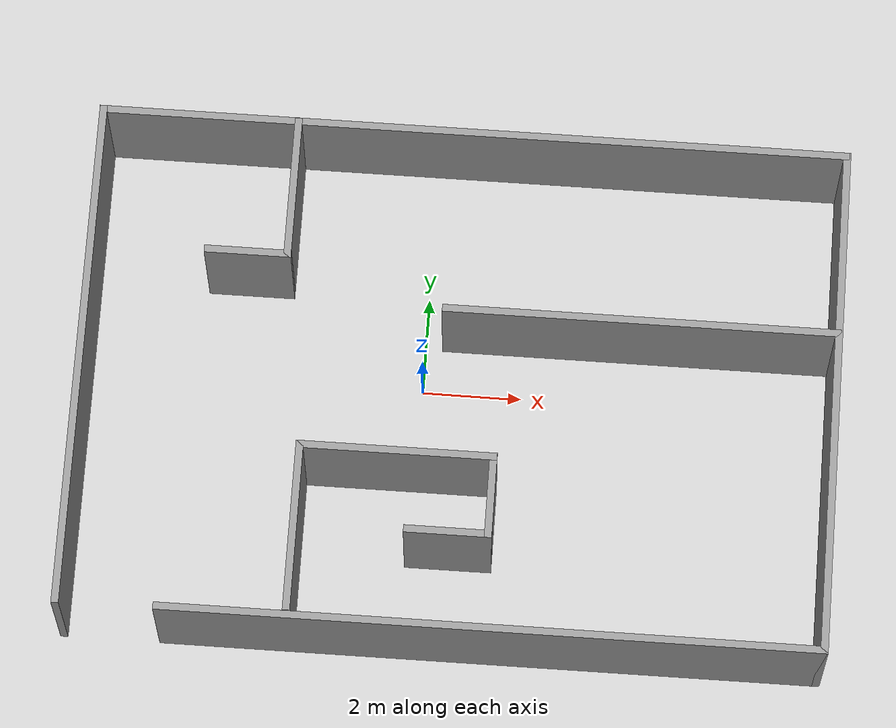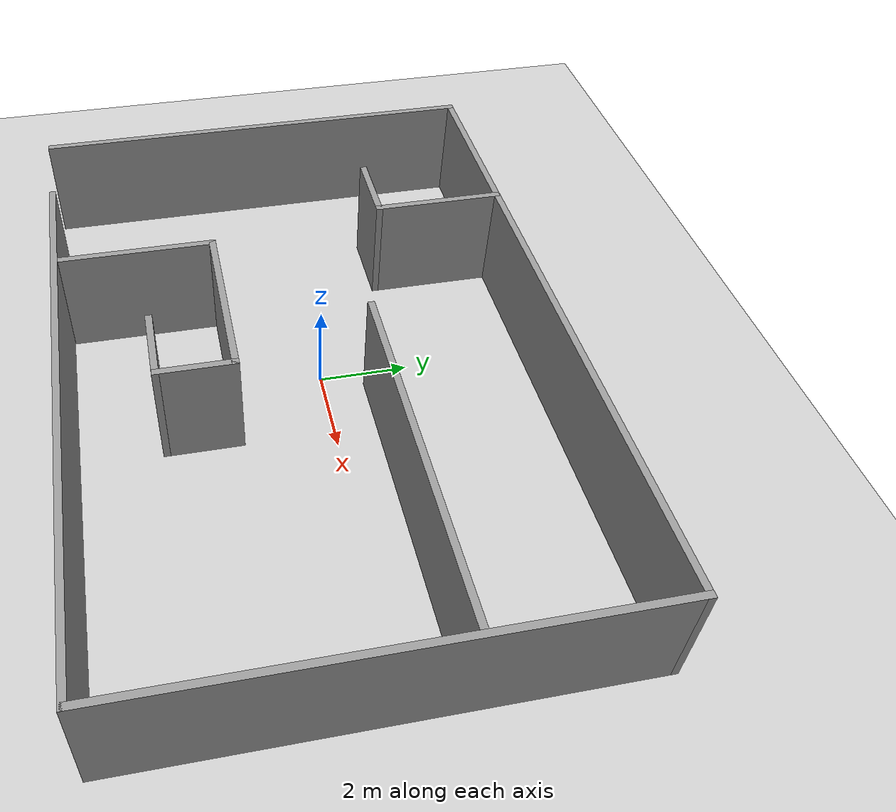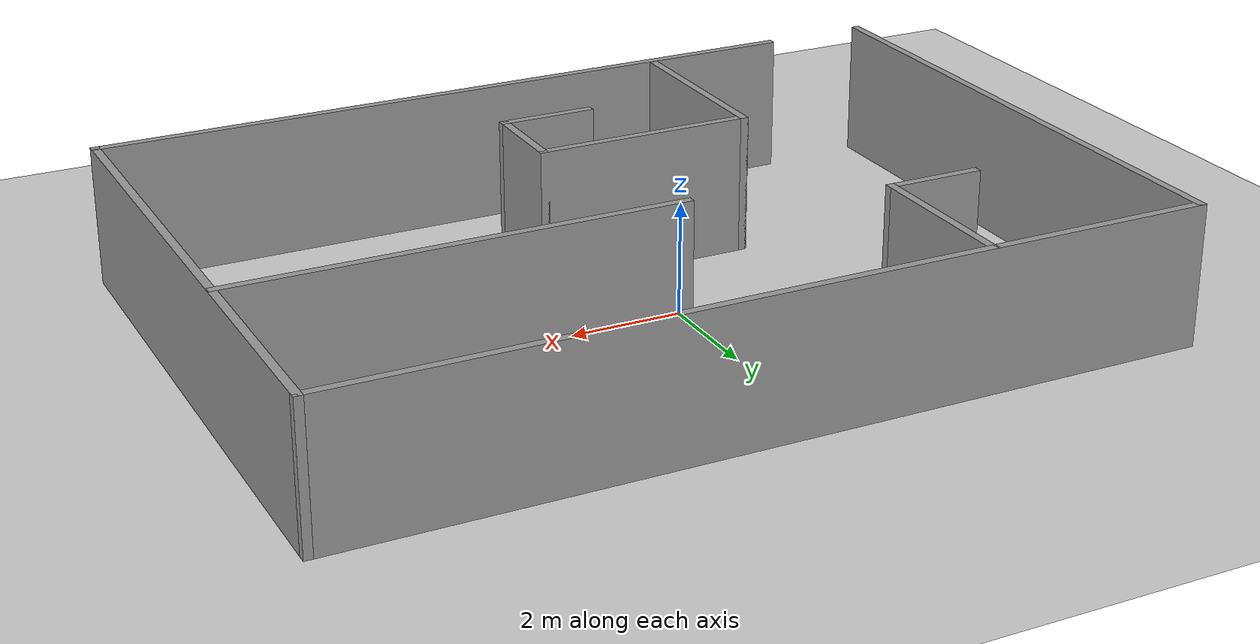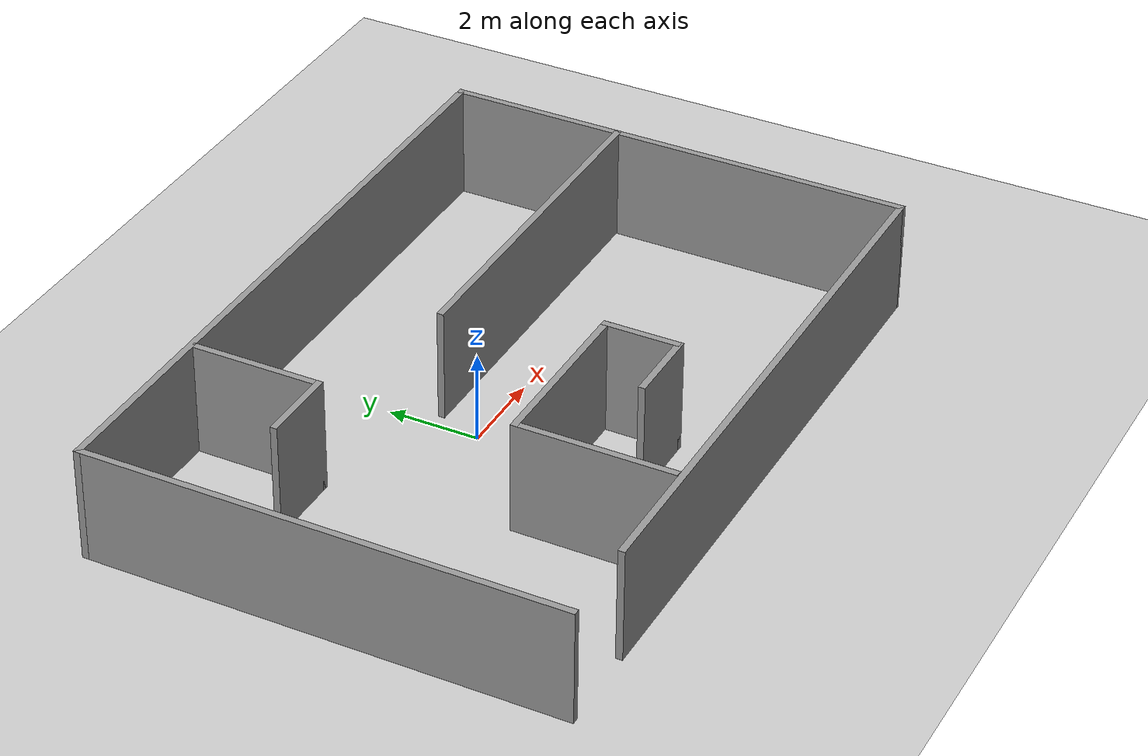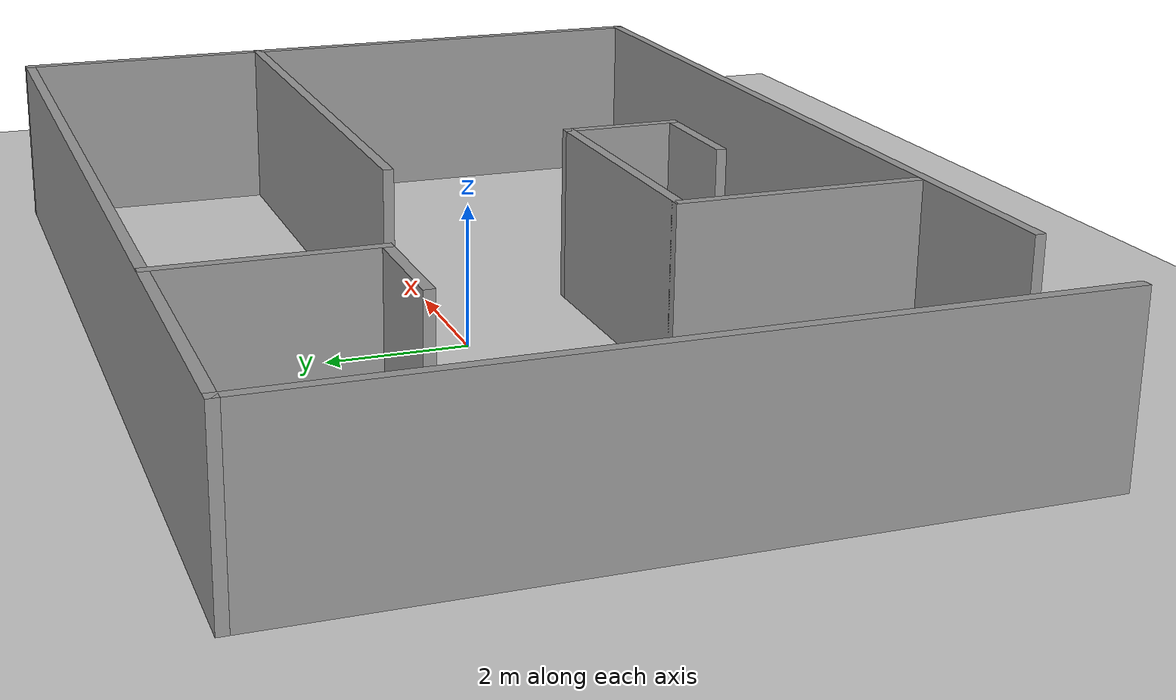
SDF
<sdf version="1.7">
 <world name="default">
  <light name="sun" type="directional">
   <pose>0 0 10 0 -0 0</pose>
   <diffuse>0.8 0.8 0.8 1</diffuse>
   <specular>0.2 0.2 0.2 1</specular>
   <attenuation>
    <range>1000</range>
    <constant>0.9</constant>
    <linear>0.01</linear>
    <quadratic>0.001</quadratic>
   </attenuation>
   <direction>-0.5 0.1 -0.9</direction>
   <spot><inner_angle>0</inner_angle><outer_angle>0</outer_angle><falloff>0</falloff></spot>
  </light>
  <model name="ground_plane">
   <static>1</static>
   <link name="link">
    <collision name="collision">
     <geometry><plane><normal>0 0 1</normal><size>100 100</size></plane></geometry>
     <surface>
      <contact><collide_bitmask>65535</collide_bitmask></contact>
      <friction><ode><mu>100</mu><mu2>50</mu2></ode></friction>
     </surface>
    </collision>
    <visual name="visual">
     <cast_shadows>0</cast_shadows>
     <geometry><plane><normal>0 0 1</normal><size>100 100</size></plane></geometry>
     <material>
      <script><uri>file://media/materials/scripts/gazebo.material</uri><name>Gazebo/Grey</name></script>
     </material>
    </visual>
   </link>
  </model>
  <gravity>0 0 -9.8</gravity>
  <magnetic_field>6e-06 2.3e-05 -4.2e-05</magnetic_field>
  <atmosphere type="adiabatic"/>
  <physics type="ode">
   <max_step_size>0.001</max_step_size>
   <real_time_factor>1</real_time_factor>
   <real_time_update_rate>1000</real_time_update_rate>
  </physics>
  <scene><ambient>0.4 0.4 0.4 1</ambient><background>0.7 0.7 0.7 1</background><shadows>1</shadows></scene>
  <spherical_coordinates>
   <surface_model>EARTH_WGS84</surface_model>
   <latitude_deg>0</latitude_deg>
   <longitude_deg>0</longitude_deg>
   <elevation>0</elevation>
   <heading_deg>0</heading_deg>
  </spherical_coordinates>
  <model name="Untitled">
   <pose>0.724411 -0.376796 0 0 -0 0</pose>
   <link name="Wall_10">
    <collision name="Wall_10_Collision">
     <geometry><box><size>1.75 0.15 2.5</size></box></geometry>
     <pose>0 0 1.25 0 -0 0</pose>
    </collision>
    <visual name="Wall_10_Visual">
     <pose>0 0 1.25 0 -0 0</pose>
     <geometry><box><size>1.75 0.15 2.5</size></box></geometry>
     <material>
      <script><uri>file://media/materials/scripts/gazebo.material</uri><name>Gazebo/Grey</name></script>
      <ambient>1 1 1 1</ambient>
     </material>
     <meta><layer>0</layer></meta>
    </visual>
    <pose>-4.37887 2.31338 0 0 -0 3.14159</pose>
   </link>
   <link name="Wall_12">
    <collision name="Wall_12_Collision">
     <geometry><box><size>3.5 0.15 2.5</size></box></geometry>
     <pose>0 0 1.25 0 -0 0</pose>
    </collision>
    <visual name="Wall_12_Visual">
     <pose>0 0 1.25 0 -0 0</pose>
     <geometry><box><size>3.5 0.15 2.5</size></box></geometry>
     <material>
      <script><uri>file://media/materials/scripts/gazebo.material</uri><name>Gazebo/Grey</name></script>
      <ambient>1 1 1 1</ambient>
     </material>
     <meta><layer>0</layer></meta>
    </visual>
    <pose>-3.01569 -3.33909 0 0 -0 1.5708</pose>
   </link>
   <link name="Wall_13">
    <collision name="Wall_13_Collision">
     <geometry><box><size>4 0.15 2.5</size></box></geometry>
     <pose>0 0 1.25 0 -0 0</pose>
    </collision>
    <visual name="Wall_13_Visual">
     <pose>0 0 1.25 0 -0 0</pose>
     <geometry><box><size>4 0.15 2.5</size></box></geometry>
     <material>
      <script><uri>file://media/materials/scripts/gazebo.material</uri><name>Gazebo/Grey</name></script>
      <ambient>1 1 1 1</ambient>
     </material>
     <meta><layer>0</layer></meta>
    </visual>
    <pose>-1.09069 -1.66409 0 0 -0 0</pose>
   </link>
   <link name="Wall_14">
    <collision name="Wall_14_Collision">
     <geometry><box><size>1.75 0.15 2.5</size></box></geometry>
     <pose>0 0 1.25 0 -0 0</pose>
    </collision>
    <visual name="Wall_14_Visual">
     <pose>0 0 1.25 0 -0 0</pose>
     <geometry><box><size>1.75 0.15 2.5</size></box></geometry>
     <material>
      <script><uri>file://media/materials/scripts/gazebo.material</uri><name>Gazebo/Grey</name></script>
      <ambient>1 1 1 1</ambient>
     </material>
     <meta><layer>0</layer></meta>
    </visual>
    <pose>0.83431 -2.46409 0 0 -0 -1.5708</pose>
   </link>
   <link name="Wall_15">
    <collision name="Wall_15_Collision">
     <geometry><box><size>1.75 0.15 2.5</size></box></geometry>
     <pose>0 0 1.25 0 -0 0</pose>
    </collision>
    <visual name="Wall_15_Visual">
     <pose>0 0 1.25 0 -0 0</pose>
     <geometry><box><size>1.75 0.15 2.5</size></box></geometry>
     <material>
      <script><uri>file://media/materials/scripts/gazebo.material</uri><name>Gazebo/Grey</name></script>
      <ambient>1 1 1 1</ambient>
     </material>
     <meta><layer>0</layer></meta>
    </visual>
    <pose>0.03431 -3.26409 0 0 -0 3.14159</pose>
   </link>
   <link name="Wall_17">
    <collision name="Wall_17_Collision">
     <geometry><box><size>8 0.15 2.5</size></box></geometry>
     <pose>0 0 1.25 0 -0 0</pose>
    </collision>
    <visual name="Wall_17_Visual">
     <pose>0 0 1.25 0 -0 0</pose>
     <geometry><box><size>8 0.15 2.5</size></box></geometry>
     <material>
      <script><uri>file://media/materials/scripts/gazebo.material</uri><name>Gazebo/Grey</name></script>
      <ambient>1 1 1 1</ambient>
     </material>
     <meta><layer>0</layer></meta>
    </visual>
    <pose>3.60453 1.38202 0 0 -0 0</pose>
   </link>
   <link name="Wall_4">
    <collision name="Wall_4_Collision">
     <geometry><box><size>13.25 0.15 2.5</size></box></geometry>
     <pose>0 0 1.25 0 -0 0</pose>
    </collision>
    <visual name="Wall_4_Visual">
     <pose>0 0 1.25 0 -0 0</pose>
     <geometry><box><size>13.25 0.15 2.5</size></box></geometry>
     <material>
      <script><uri>file://media/materials/scripts/gazebo.material</uri><name>Gazebo/Grey</name></script>
      <ambient>1 1 1 1</ambient>
     </material>
     <meta><layer>0</layer></meta>
    </visual>
    <pose>1 -5.175 0 0 -0 0</pose>
   </link>
   <link name="Wall_5">
    <collision name="Wall_5_Collision">
     <geometry><box><size>10.5 0.15 2.5</size></box></geometry>
     <pose>0 0 1.25 0 -0 0</pose>
    </collision>
    <visual name="Wall_5_Visual">
     <pose>0 0 1.25 0 -0 0</pose>
     <geometry><box><size>10.5 0.15 2.5</size></box></geometry>
     <material>
      <script><uri>file://media/materials/scripts/gazebo.material</uri><name>Gazebo/Grey</name></script>
      <ambient>1 1 1 1</ambient>
     </material>
     <meta><layer>0</layer></meta>
    </visual>
    <pose>7.55 0 0 0 -0 1.5708</pose>
   </link>
   <link name="Wall_6">
    <collision name="Wall_6_Collision">
     <geometry><box><size>15.25 0.15 2.5</size></box></geometry>
     <pose>0 0 1.25 0 -0 0</pose>
    </collision>
    <visual name="Wall_6_Visual">
     <pose>0 0 1.25 0 -0 0</pose>
     <geometry><box><size>15.25 0.15 2.5</size></box></geometry>
     <material>
      <script><uri>file://media/materials/scripts/gazebo.material</uri><name>Gazebo/Grey</name></script>
      <ambient>1 1 1 1</ambient>
     </material>
     <meta><layer>0</layer></meta>
    </visual>
    <pose>-0 5.175 0 0 -0 3.14159</pose>
   </link>
   <link name="Wall_7">
    <collision name="Wall_7_Collision">
     <geometry><box><size>10.5 0.15 2.5</size></box></geometry>
     <pose>0 0 1.25 0 -0 0</pose>
    </collision>
    <visual name="Wall_7_Visual">
     <pose>0 0 1.25 0 -0 0</pose>
     <geometry><box><size>10.5 0.15 2.5</size></box></geometry>
     <material>
      <script><uri>file://media/materials/scripts/gazebo.material</uri><name>Gazebo/Grey</name></script>
      <ambient>1 1 1 1</ambient>
     </material>
     <meta><layer>0</layer></meta>
    </visual>
    <pose>-7.55 0 0 0 -0 -1.5708</pose>
   </link>
   <link name="Wall_9">
    <collision name="Wall_9_Collision">
     <geometry><box><size>3 0.15 2.5</size></box></geometry>
     <pose>0 0 1.25 0 -0 0</pose>
    </collision>
    <visual name="Wall_9_Visual">
     <pose>0 0 1.25 0 -0 0</pose>
     <geometry><box><size>3 0.15 2.5</size></box></geometry>
     <material>
      <script><uri>file://media/materials/scripts/gazebo.material</uri><name>Gazebo/Grey</name></script>
      <ambient>1 1 1 1</ambient>
     </material>
     <meta><layer>0</layer></meta>
    </visual>
    <pose>-3.57887 3.73838 0 0 -0 -1.5708</pose>
   </link>
   <static>1</static>
  </model>
 </world>
</sdf>
